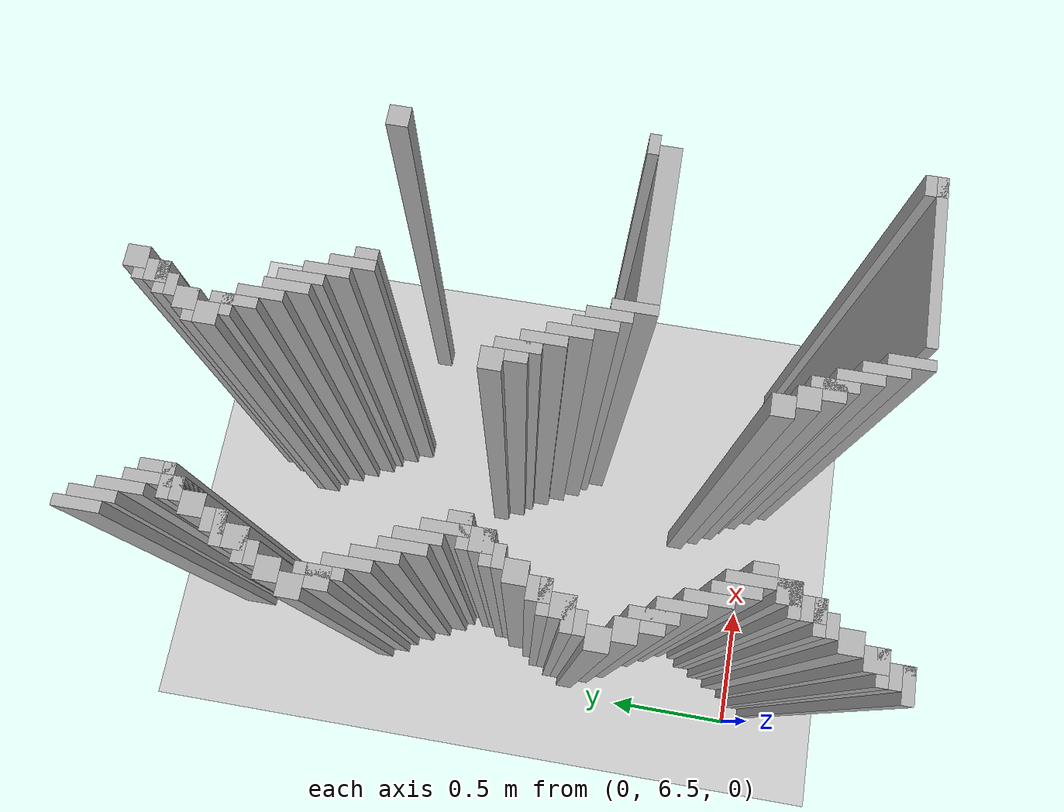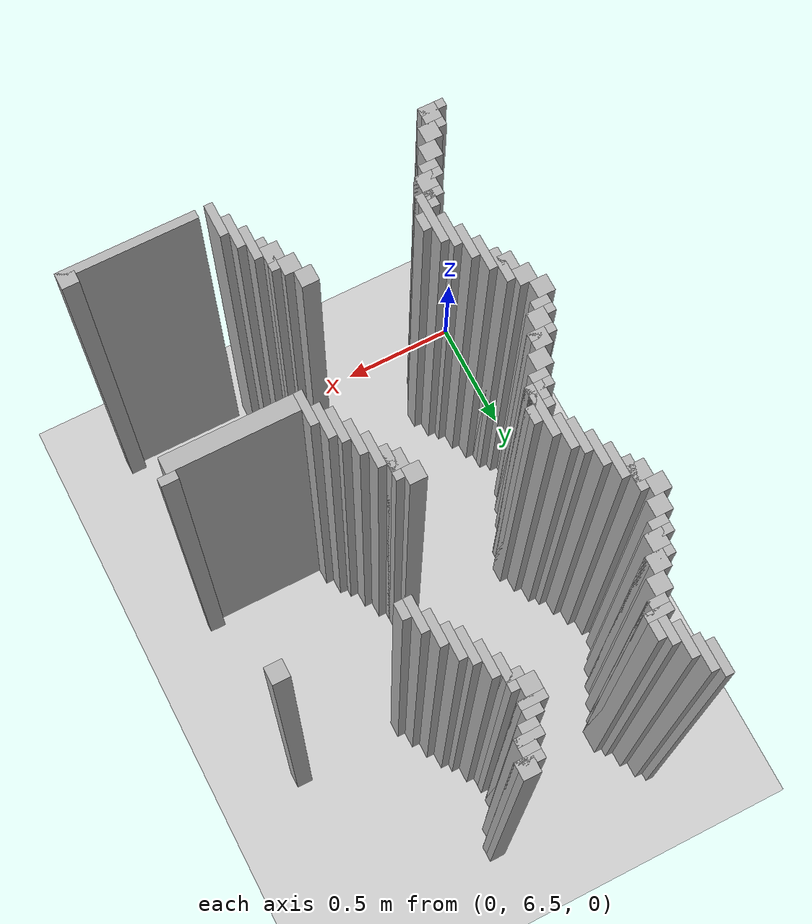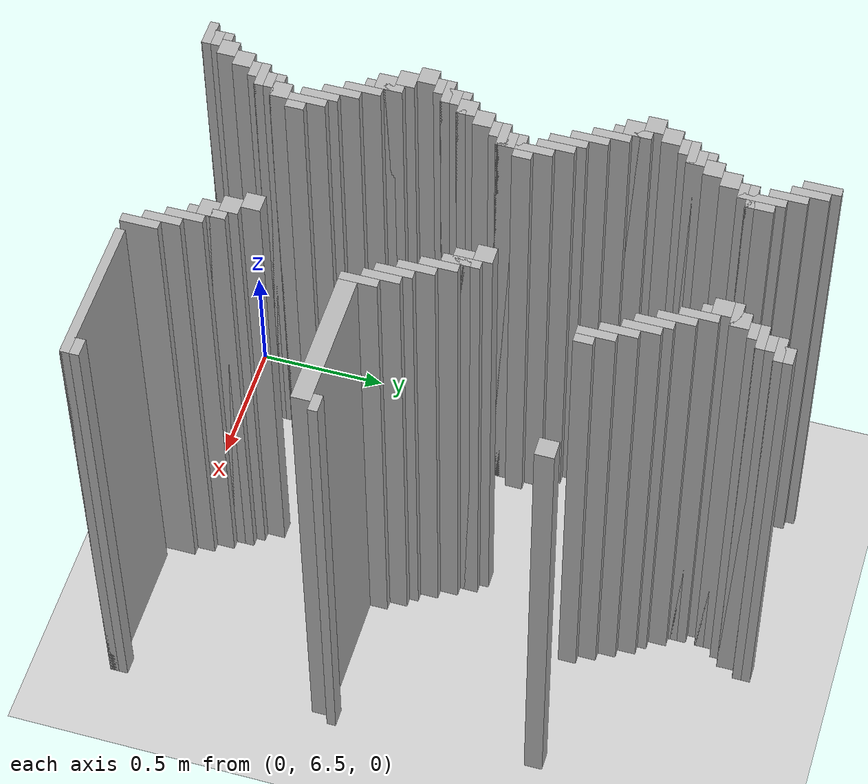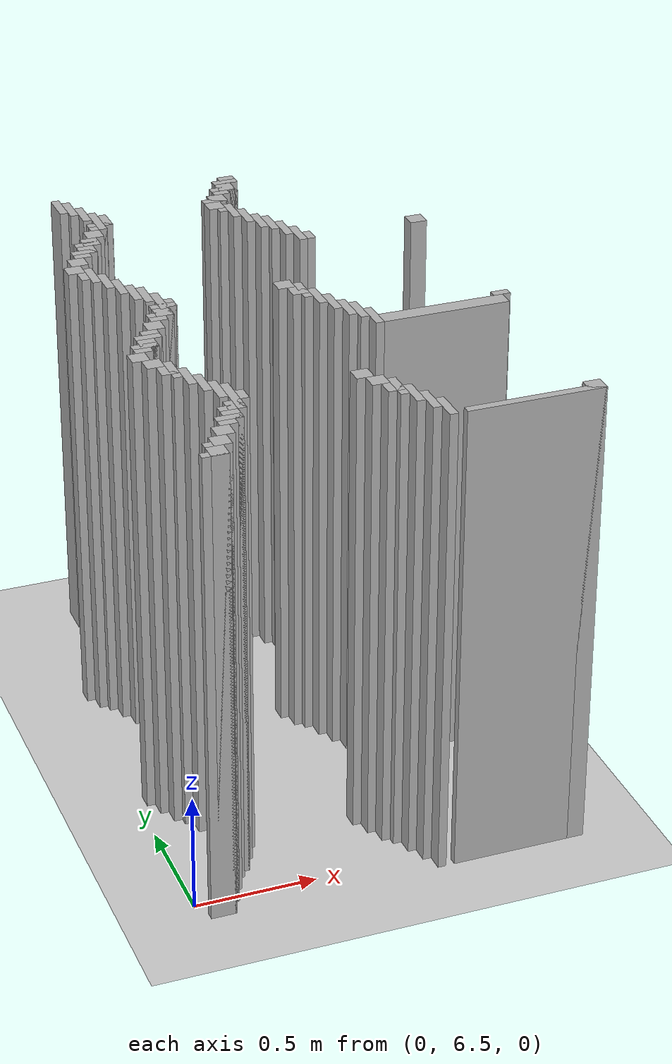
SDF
<sdf version="1.6">
 <world name="slam_world">
  <model name="ground_plane">
   <static>true</static>
   <link name="link">
    <collision name="collision">
     <geometry><plane><normal>0 0 1</normal><size>100 100</size></plane></geometry>
    </collision>
    <visual name="visual">
     <geometry><plane><normal>0 0 1</normal><size>100 100</size></plane></geometry>
     <material>
      <ambient>0.8 0.8 0.8 1</ambient>
      <diffuse>0.8 0.8 0.8 1</diffuse>
      <specular>0.8 0.8 0.8 1</specular>
     </material>
    </visual>
   </link>
  </model>
  <model name="wall_2921">
   <static>true</static>
   <pose>0.191415313225058 8.700696055684455 1.0 0 0 0</pose>
   <link name="link">
    <collision name="collision">
     <geometry><box><size>0.03480278422273782 0.13921113689095127 2.0</size></box></geometry>
    </collision>
    <visual name="visual">
     <geometry><box><size>0.03480278422273782 0.13921113689095127 2.0</size></box></geometry>
     <material><ambient>0.5 0.5 0.5 1</ambient><diffuse>0.7 0.7 0.7 1</diffuse></material>
    </visual>
   </link>
  </model>
  <model name="wall_2922">
   <static>true</static>
   <pose>0.9396751740139211 8.735498839907192 1.0 0 0 0</pose>
   <link name="link">
    <collision name="collision">
     <geometry><box><size>0.06960556844547564 0.06960556844547564 2.0</size></box></geometry>
    </collision>
    <visual name="visual">
     <geometry><box><size>0.06960556844547564 0.06960556844547564 2.0</size></box></geometry>
     <material><ambient>0.5 0.5 0.5 1</ambient><diffuse>0.7 0.7 0.7 1</diffuse></material>
    </visual>
   </link>
  </model>
  <model name="wall_2936">
   <static>true</static>
   <pose>0.2262180974477958 8.665893271461716 1.0 0 0 0</pose>
   <link name="link">
    <collision name="collision">
     <geometry><box><size>0.03480278422273782 0.13921113689095127 2.0</size></box></geometry>
    </collision>
    <visual name="visual">
     <geometry><box><size>0.03480278422273782 0.13921113689095127 2.0</size></box></geometry>
     <material><ambient>0.5 0.5 0.5 1</ambient><diffuse>0.7 0.7 0.7 1</diffuse></material>
    </visual>
   </link>
  </model>
  <model name="wall_2937">
   <static>true</static>
   <pose>0.9222737819025522 8.718097447795824 1.0 0 0 0</pose>
   <link name="link">
    <collision name="collision">
     <geometry><box><size>0.10440835266821345 0.03480278422273782 2.0</size></box></geometry>
    </collision>
    <visual name="visual">
     <geometry><box><size>0.10440835266821345 0.03480278422273782 2.0</size></box></geometry>
     <material><ambient>0.5 0.5 0.5 1</ambient><diffuse>0.7 0.7 0.7 1</diffuse></material>
    </visual>
   </link>
  </model>
  <model name="wall_2951">
   <static>true</static>
   <pose>0.9048723897911832 8.665893271461716 1.0 0 0 0</pose>
   <link name="link">
    <collision name="collision">
     <geometry><box><size>0.06960556844547564 0.06960556844547564 2.0</size></box></geometry>
    </collision>
    <visual name="visual">
     <geometry><box><size>0.06960556844547564 0.06960556844547564 2.0</size></box></geometry>
     <material><ambient>0.5 0.5 0.5 1</ambient><diffuse>0.7 0.7 0.7 1</diffuse></material>
    </visual>
   </link>
  </model>
  <model name="wall_2961">
   <static>true</static>
   <pose>0.2610208816705336 8.596287703016241 1.0 0 0 0</pose>
   <link name="link">
    <collision name="collision">
     <geometry><box><size>0.03480278422273782 0.13921113689095127 2.0</size></box></geometry>
    </collision>
    <visual name="visual">
     <geometry><box><size>0.03480278422273782 0.13921113689095127 2.0</size></box></geometry>
     <material><ambient>0.5 0.5 0.5 1</ambient><diffuse>0.7 0.7 0.7 1</diffuse></material>
    </visual>
   </link>
  </model>
  <model name="wall_2962">
   <static>true</static>
   <pose>0.8874709976798143 8.648491879350347 1.0 0 0 0</pose>
   <link name="link">
    <collision name="collision">
     <geometry><box><size>0.10440835266821345 0.03480278422273782 2.0</size></box></geometry>
    </collision>
    <visual name="visual">
     <geometry><box><size>0.10440835266821345 0.03480278422273782 2.0</size></box></geometry>
     <material><ambient>0.5 0.5 0.5 1</ambient><diffuse>0.7 0.7 0.7 1</diffuse></material>
    </visual>
   </link>
  </model>
  <model name="wall_2976">
   <static>true</static>
   <pose>0.8700696055684455 8.61368909512761 1.0 0 0 0</pose>
   <link name="link">
    <collision name="collision">
     <geometry><box><size>0.06960556844547564 0.03480278422273782 2.0</size></box></geometry>
    </collision>
    <visual name="visual">
     <geometry><box><size>0.06960556844547564 0.03480278422273782 2.0</size></box></geometry>
     <material><ambient>0.5 0.5 0.5 1</ambient><diffuse>0.7 0.7 0.7 1</diffuse></material>
    </visual>
   </link>
  </model>
  <model name="wall_2985">
   <static>true</static>
   <pose>0.29582366589327147 8.509280742459396 1.0 0 0 0</pose>
   <link name="link">
    <collision name="collision">
     <geometry><box><size>0.03480278422273782 0.17401392111368907 2.0</size></box></geometry>
    </collision>
    <visual name="visual">
     <geometry><box><size>0.03480278422273782 0.17401392111368907 2.0</size></box></geometry>
     <material><ambient>0.5 0.5 0.5 1</ambient><diffuse>0.7 0.7 0.7 1</diffuse></material>
    </visual>
   </link>
  </model>
  <model name="wall_2986">
   <static>true</static>
   <pose>0.8352668213457076 8.561484918793504 1.0 0 0 0</pose>
   <link name="link">
    <collision name="collision">
     <geometry><box><size>0.06960556844547564 0.06960556844547564 2.0</size></box></geometry>
    </collision>
    <visual name="visual">
     <geometry><box><size>0.06960556844547564 0.06960556844547564 2.0</size></box></geometry>
     <material><ambient>0.5 0.5 0.5 1</ambient><diffuse>0.7 0.7 0.7 1</diffuse></material>
    </visual>
   </link>
  </model>
  <model name="wall_3000">
   <static>true</static>
   <pose>0.3306264501160093 8.509280742459396 1.0 0 0 0</pose>
   <link name="link">
    <collision name="collision">
     <geometry><box><size>0.03480278422273782 0.10440835266821345 2.0</size></box></geometry>
    </collision>
    <visual name="visual">
     <geometry><box><size>0.03480278422273782 0.10440835266821345 2.0</size></box></geometry>
     <material><ambient>0.5 0.5 0.5 1</ambient><diffuse>0.7 0.7 0.7 1</diffuse></material>
    </visual>
   </link>
  </model>
  <model name="wall_3001">
   <static>true</static>
   <pose>0.8178654292343387 8.544083526682135 1.0 0 0 0</pose>
   <link name="link">
    <collision name="collision">
     <geometry><box><size>0.10440835266821345 0.03480278422273782 2.0</size></box></geometry>
    </collision>
    <visual name="visual">
     <geometry><box><size>0.10440835266821345 0.03480278422273782 2.0</size></box></geometry>
     <material><ambient>0.5 0.5 0.5 1</ambient><diffuse>0.7 0.7 0.7 1</diffuse></material>
    </visual>
   </link>
  </model>
  <model name="wall_3015">
   <static>true</static>
   <pose>0.8004640371229698 8.491879350348027 1.0 0 0 0</pose>
   <link name="link">
    <collision name="collision">
     <geometry><box><size>0.06960556844547564 0.06960556844547564 2.0</size></box></geometry>
    </collision>
    <visual name="visual">
     <geometry><box><size>0.06960556844547564 0.06960556844547564 2.0</size></box></geometry>
     <material><ambient>0.5 0.5 0.5 1</ambient><diffuse>0.7 0.7 0.7 1</diffuse></material>
    </visual>
   </link>
  </model>
  <model name="wall_3027">
   <static>true</static>
   <pose>0.29582366589327147 8.474477958236658 1.0 0 0 0</pose>
   <link name="link">
    <collision name="collision">
     <geometry><box><size>0.10440835266821345 0.03480278422273782 2.0</size></box></geometry>
    </collision>
    <visual name="visual">
     <geometry><box><size>0.10440835266821345 0.03480278422273782 2.0</size></box></geometry>
     <material><ambient>0.5 0.5 0.5 1</ambient><diffuse>0.7 0.7 0.7 1</diffuse></material>
    </visual>
   </link>
  </model>
  <model name="wall_3028">
   <static>true</static>
   <pose>0.8526682134570766 8.422273781902552 1.0 0 0 0</pose>
   <link name="link">
    <collision name="collision">
     <geometry><box><size>0.03480278422273782 0.13921113689095127 2.0</size></box></geometry>
    </collision>
    <visual name="visual">
     <geometry><box><size>0.03480278422273782 0.13921113689095127 2.0</size></box></geometry>
     <material><ambient>0.5 0.5 0.5 1</ambient><diffuse>0.7 0.7 0.7 1</diffuse></material>
    </visual>
   </link>
  </model>
  <model name="wall_3042">
   <static>true</static>
   <pose>0.27842227378190254 8.43967517401392 1.0 0 0 0</pose>
   <link name="link">
    <collision name="collision">
     <geometry><box><size>0.06960556844547564 0.03480278422273782 2.0</size></box></geometry>
    </collision>
    <visual name="visual">
     <geometry><box><size>0.06960556844547564 0.03480278422273782 2.0</size></box></geometry>
     <material><ambient>0.5 0.5 0.5 1</ambient><diffuse>0.7 0.7 0.7 1</diffuse></material>
    </visual>
   </link>
  </model>
  <model name="wall_3043">
   <static>true</static>
   <pose>0.8352668213457076 8.43967517401392 1.0 0 0 0</pose>
   <link name="link">
    <collision name="collision">
     <geometry><box><size>0.06960556844547564 0.03480278422273782 2.0</size></box></geometry>
    </collision>
    <visual name="visual">
     <geometry><box><size>0.06960556844547564 0.03480278422273782 2.0</size></box></geometry>
     <material><ambient>0.5 0.5 0.5 1</ambient><diffuse>0.7 0.7 0.7 1</diffuse></material>
    </visual>
   </link>
  </model>
  <model name="wall_3059">
   <static>true</static>
   <pose>0.24361948955916474 8.387470997679815 1.0 0 0 0</pose>
   <link name="link">
    <collision name="collision">
     <geometry><box><size>0.06960556844547564 0.06960556844547564 2.0</size></box></geometry>
    </collision>
    <visual name="visual">
     <geometry><box><size>0.06960556844547564 0.06960556844547564 2.0</size></box></geometry>
     <material><ambient>0.5 0.5 0.5 1</ambient><diffuse>0.7 0.7 0.7 1</diffuse></material>
    </visual>
   </link>
  </model>
  <model name="wall_3060">
   <static>true</static>
   <pose>0.8874709976798143 8.352668213457076 1.0 0 0 0</pose>
   <link name="link">
    <collision name="collision">
     <geometry><box><size>0.03480278422273782 0.13921113689095127 2.0</size></box></geometry>
    </collision>
    <visual name="visual">
     <geometry><box><size>0.03480278422273782 0.13921113689095127 2.0</size></box></geometry>
     <material><ambient>0.5 0.5 0.5 1</ambient><diffuse>0.7 0.7 0.7 1</diffuse></material>
    </visual>
   </link>
  </model>
  <model name="wall_3076">
   <static>true</static>
   <pose>0.2088167053364269 8.317865429234338 1.0 0 0 0</pose>
   <link name="link">
    <collision name="collision">
     <geometry><box><size>0.06960556844547564 0.06960556844547564 2.0</size></box></geometry>
    </collision>
    <visual name="visual">
     <geometry><box><size>0.06960556844547564 0.06960556844547564 2.0</size></box></geometry>
     <material><ambient>0.5 0.5 0.5 1</ambient><diffuse>0.7 0.7 0.7 1</diffuse></material>
    </visual>
   </link>
  </model>
  <model name="wall_3077">
   <static>true</static>
   <pose>0.9222737819025522 8.2830626450116 1.0 0 0 0</pose>
   <link name="link">
    <collision name="collision">
     <geometry><box><size>0.03480278422273782 0.13921113689095127 2.0</size></box></geometry>
    </collision>
    <visual name="visual">
     <geometry><box><size>0.03480278422273782 0.13921113689095127 2.0</size></box></geometry>
     <material><ambient>0.5 0.5 0.5 1</ambient><diffuse>0.7 0.7 0.7 1</diffuse></material>
    </visual>
   </link>
  </model>
  <model name="wall_3093">
   <static>true</static>
   <pose>0.191415313225058 8.30046403712297 1.0 0 0 0</pose>
   <link name="link">
    <collision name="collision">
     <geometry><box><size>0.10440835266821345 0.03480278422273782 2.0</size></box></geometry>
    </collision>
    <visual name="visual">
     <geometry><box><size>0.10440835266821345 0.03480278422273782 2.0</size></box></geometry>
     <material><ambient>0.5 0.5 0.5 1</ambient><diffuse>0.7 0.7 0.7 1</diffuse></material>
    </visual>
   </link>
  </model>
  <model name="wall_3094">
   <static>true</static>
   <pose>0.95707656612529 8.248259860788863 1.0 0 0 0</pose>
   <link name="link">
    <collision name="collision">
     <geometry><box><size>0.03480278422273782 0.13921113689095127 2.0</size></box></geometry>
    </collision>
    <visual name="visual">
     <geometry><box><size>0.03480278422273782 0.13921113689095127 2.0</size></box></geometry>
     <material><ambient>0.5 0.5 0.5 1</ambient><diffuse>0.7 0.7 0.7 1</diffuse></material>
    </visual>
   </link>
  </model>
  <model name="wall_3110">
   <static>true</static>
   <pose>0.17401392111368907 8.248259860788863 1.0 0 0 0</pose>
   <link name="link">
    <collision name="collision">
     <geometry><box><size>0.06960556844547564 0.06960556844547564 2.0</size></box></geometry>
    </collision>
    <visual name="visual">
     <geometry><box><size>0.06960556844547564 0.06960556844547564 2.0</size></box></geometry>
     <material><ambient>0.5 0.5 0.5 1</ambient><diffuse>0.7 0.7 0.7 1</diffuse></material>
    </visual>
   </link>
  </model>
  <model name="wall_3123">
   <static>true</static>
   <pose>0.15661252900232017 8.230858468677495 1.0 0 0 0</pose>
   <link name="link">
    <collision name="collision">
     <geometry><box><size>0.10440835266821345 0.03480278422273782 2.0</size></box></geometry>
    </collision>
    <visual name="visual">
     <geometry><box><size>0.10440835266821345 0.03480278422273782 2.0</size></box></geometry>
     <material><ambient>0.5 0.5 0.5 1</ambient><diffuse>0.7 0.7 0.7 1</diffuse></material>
    </visual>
   </link>
  </model>
  <model name="wall_3124">
   <static>true</static>
   <pose>0.9918793503480278 8.178654292343387 1.0 0 0 0</pose>
   <link name="link">
    <collision name="collision">
     <geometry><box><size>0.03480278422273782 0.13921113689095127 2.0</size></box></geometry>
    </collision>
    <visual name="visual">
     <geometry><box><size>0.03480278422273782 0.13921113689095127 2.0</size></box></geometry>
     <material><ambient>0.5 0.5 0.5 1</ambient><diffuse>0.7 0.7 0.7 1</diffuse></material>
    </visual>
   </link>
  </model>
  <model name="wall_3140">
   <static>true</static>
   <pose>0.13921113689095127 8.196055684454755 1.0 0 0 0</pose>
   <link name="link">
    <collision name="collision">
     <geometry><box><size>0.06960556844547564 0.03480278422273782 2.0</size></box></geometry>
    </collision>
    <visual name="visual">
     <geometry><box><size>0.06960556844547564 0.03480278422273782 2.0</size></box></geometry>
     <material><ambient>0.5 0.5 0.5 1</ambient><diffuse>0.7 0.7 0.7 1</diffuse></material>
    </visual>
   </link>
  </model>
  <model name="wall_3149">
   <static>true</static>
   <pose>0.10440835266821345 8.14385150812065 1.0 0 0 0</pose>
   <link name="link">
    <collision name="collision">
     <geometry><box><size>0.06960556844547564 0.06960556844547564 2.0</size></box></geometry>
    </collision>
    <visual name="visual">
     <geometry><box><size>0.06960556844547564 0.06960556844547564 2.0</size></box></geometry>
     <material><ambient>0.5 0.5 0.5 1</ambient><diffuse>0.7 0.7 0.7 1</diffuse></material>
    </visual>
   </link>
  </model>
  <model name="wall_3150">
   <static>true</static>
   <pose>1.0266821345707655 8.109048723897912 1.0 0 0 0</pose>
   <link name="link">
    <collision name="collision">
     <geometry><box><size>0.03480278422273782 0.13921113689095127 2.0</size></box></geometry>
    </collision>
    <visual name="visual">
     <geometry><box><size>0.03480278422273782 0.13921113689095127 2.0</size></box></geometry>
     <material><ambient>0.5 0.5 0.5 1</ambient><diffuse>0.7 0.7 0.7 1</diffuse></material>
    </visual>
   </link>
  </model>
  <model name="wall_3178">
   <static>true</static>
   <pose>0.06960556844547564 8.074245939675174 1.0 0 0 0</pose>
   <link name="link">
    <collision name="collision">
     <geometry><box><size>0.06960556844547564 0.06960556844547564 2.0</size></box></geometry>
    </collision>
    <visual name="visual">
     <geometry><box><size>0.06960556844547564 0.06960556844547564 2.0</size></box></geometry>
     <material><ambient>0.5 0.5 0.5 1</ambient><diffuse>0.7 0.7 0.7 1</diffuse></material>
    </visual>
   </link>
  </model>
  <model name="wall_3179">
   <static>true</static>
   <pose>1.0614849187935034 8.074245939675174 1.0 0 0 0</pose>
   <link name="link">
    <collision name="collision">
     <geometry><box><size>0.03480278422273782 0.06960556844547564 2.0</size></box></geometry>
    </collision>
    <visual name="visual">
     <geometry><box><size>0.03480278422273782 0.06960556844547564 2.0</size></box></geometry>
     <material><ambient>0.5 0.5 0.5 1</ambient><diffuse>0.7 0.7 0.7 1</diffuse></material>
    </visual>
   </link>
  </model>
  <model name="wall_3180">
   <static>true</static>
   <pose>1.531322505800464 8.074245939675174 1.0 0 0 0</pose>
   <link name="link">
    <collision name="collision">
     <geometry><box><size>0.06960556844547564 0.06960556844547564 2.0</size></box></geometry>
    </collision>
    <visual name="visual">
     <geometry><box><size>0.06960556844547564 0.06960556844547564 2.0</size></box></geometry>
     <material><ambient>0.5 0.5 0.5 1</ambient><diffuse>0.7 0.7 0.7 1</diffuse></material>
    </visual>
   </link>
  </model>
  <model name="wall_3192">
   <static>true</static>
   <pose>0.12180974477958237 8.004640371229698 1.0 0 0 0</pose>
   <link name="link">
    <collision name="collision">
     <geometry><box><size>0.03480278422273782 0.13921113689095127 2.0</size></box></geometry>
    </collision>
    <visual name="visual">
     <geometry><box><size>0.03480278422273782 0.13921113689095127 2.0</size></box></geometry>
     <material><ambient>0.5 0.5 0.5 1</ambient><diffuse>0.7 0.7 0.7 1</diffuse></material>
    </visual>
   </link>
  </model>
  <model name="wall_3205">
   <static>true</static>
   <pose>0.10440835266821345 8.004640371229698 1.0 0 0 0</pose>
   <link name="link">
    <collision name="collision">
     <geometry><box><size>0.06960556844547564 0.06960556844547564 2.0</size></box></geometry>
    </collision>
    <visual name="visual">
     <geometry><box><size>0.06960556844547564 0.06960556844547564 2.0</size></box></geometry>
     <material><ambient>0.5 0.5 0.5 1</ambient><diffuse>0.7 0.7 0.7 1</diffuse></material>
    </visual>
   </link>
  </model>
  <model name="wall_3218">
   <static>true</static>
   <pose>0.15661252900232017 7.935034802784222 1.0 0 0 0</pose>
   <link name="link">
    <collision name="collision">
     <geometry><box><size>0.03480278422273782 0.13921113689095127 2.0</size></box></geometry>
    </collision>
    <visual name="visual">
     <geometry><box><size>0.03480278422273782 0.13921113689095127 2.0</size></box></geometry>
     <material><ambient>0.5 0.5 0.5 1</ambient><diffuse>0.7 0.7 0.7 1</diffuse></material>
    </visual>
   </link>
  </model>
  <model name="wall_3236">
   <static>true</static>
   <pose>0.191415313225058 7.865429234338746 1.0 0 0 0</pose>
   <link name="link">
    <collision name="collision">
     <geometry><box><size>0.03480278422273782 0.13921113689095127 2.0</size></box></geometry>
    </collision>
    <visual name="visual">
     <geometry><box><size>0.03480278422273782 0.13921113689095127 2.0</size></box></geometry>
     <material><ambient>0.5 0.5 0.5 1</ambient><diffuse>0.7 0.7 0.7 1</diffuse></material>
    </visual>
   </link>
  </model>
  <model name="wall_3249">
   <static>true</static>
   <pose>0.2262180974477958 7.795823665893272 1.0 0 0 0</pose>
   <link name="link">
    <collision name="collision">
     <geometry><box><size>0.03480278422273782 0.13921113689095127 2.0</size></box></geometry>
    </collision>
    <visual name="visual">
     <geometry><box><size>0.03480278422273782 0.13921113689095127 2.0</size></box></geometry>
     <material><ambient>0.5 0.5 0.5 1</ambient><diffuse>0.7 0.7 0.7 1</diffuse></material>
    </visual>
   </link>
  </model>
  <model name="wall_3262">
   <static>true</static>
   <pose>0.2610208816705336 7.761020881670533 1.0 0 0 0</pose>
   <link name="link">
    <collision name="collision">
     <geometry><box><size>0.03480278422273782 0.13921113689095127 2.0</size></box></geometry>
    </collision>
    <visual name="visual">
     <geometry><box><size>0.03480278422273782 0.13921113689095127 2.0</size></box></geometry>
     <material><ambient>0.5 0.5 0.5 1</ambient><diffuse>0.7 0.7 0.7 1</diffuse></material>
    </visual>
   </link>
  </model>
  <model name="wall_3280">
   <static>true</static>
   <pose>0.29582366589327147 7.65661252900232 1.0 0 0 0</pose>
   <link name="link">
    <collision name="collision">
     <geometry><box><size>0.03480278422273782 0.2088167053364269 2.0</size></box></geometry>
    </collision>
    <visual name="visual">
     <geometry><box><size>0.03480278422273782 0.2088167053364269 2.0</size></box></geometry>
     <material><ambient>0.5 0.5 0.5 1</ambient><diffuse>0.7 0.7 0.7 1</diffuse></material>
    </visual>
   </link>
  </model>
  <model name="wall_3298">
   <static>true</static>
   <pose>0.3306264501160093 7.65661252900232 1.0 0 0 0</pose>
   <link name="link">
    <collision name="collision">
     <geometry><box><size>0.03480278422273782 0.06960556844547564 2.0</size></box></geometry>
    </collision>
    <visual name="visual">
     <geometry><box><size>0.03480278422273782 0.06960556844547564 2.0</size></box></geometry>
     <material><ambient>0.5 0.5 0.5 1</ambient><diffuse>0.7 0.7 0.7 1</diffuse></material>
    </visual>
   </link>
  </model>
  <model name="wall_3299">
   <static>true</static>
   <pose>0.8004640371229698 7.65661252900232 1.0 0 0 0</pose>
   <link name="link">
    <collision name="collision">
     <geometry><box><size>0.06960556844547564 0.06960556844547564 2.0</size></box></geometry>
    </collision>
    <visual name="visual">
     <geometry><box><size>0.06960556844547564 0.06960556844547564 2.0</size></box></geometry>
     <material><ambient>0.5 0.5 0.5 1</ambient><diffuse>0.7 0.7 0.7 1</diffuse></material>
    </visual>
   </link>
  </model>
  <model name="wall_3312">
   <static>true</static>
   <pose>0.29582366589327147 7.6392111368909505 1.0 0 0 0</pose>
   <link name="link">
    <collision name="collision">
     <geometry><box><size>0.10440835266821345 0.03480278422273782 2.0</size></box></geometry>
    </collision>
    <visual name="visual">
     <geometry><box><size>0.10440835266821345 0.03480278422273782 2.0</size></box></geometry>
     <material><ambient>0.5 0.5 0.5 1</ambient><diffuse>0.7 0.7 0.7 1</diffuse></material>
    </visual>
   </link>
  </model>
  <model name="wall_3313">
   <static>true</static>
   <pose>0.8526682134570766 7.587006960556844 1.0 0 0 0</pose>
   <link name="link">
    <collision name="collision">
     <geometry><box><size>0.03480278422273782 0.13921113689095127 2.0</size></box></geometry>
    </collision>
    <visual name="visual">
     <geometry><box><size>0.03480278422273782 0.13921113689095127 2.0</size></box></geometry>
     <material><ambient>0.5 0.5 0.5 1</ambient><diffuse>0.7 0.7 0.7 1</diffuse></material>
    </visual>
   </link>
  </model>
  <model name="wall_3324">
   <static>true</static>
   <pose>0.27842227378190254 7.587006960556844 1.0 0 0 0</pose>
   <link name="link">
    <collision name="collision">
     <geometry><box><size>0.06960556844547564 0.06960556844547564 2.0</size></box></geometry>
    </collision>
    <visual name="visual">
     <geometry><box><size>0.06960556844547564 0.06960556844547564 2.0</size></box></geometry>
     <material><ambient>0.5 0.5 0.5 1</ambient><diffuse>0.7 0.7 0.7 1</diffuse></material>
    </visual>
   </link>
  </model>
  <model name="wall_3325">
   <static>true</static>
   <pose>0.8352668213457076 7.587006960556844 1.0 0 0 0</pose>
   <link name="link">
    <collision name="collision">
     <geometry><box><size>0.06960556844547564 0.06960556844547564 2.0</size></box></geometry>
    </collision>
    <visual name="visual">
     <geometry><box><size>0.06960556844547564 0.06960556844547564 2.0</size></box></geometry>
     <material><ambient>0.5 0.5 0.5 1</ambient><diffuse>0.7 0.7 0.7 1</diffuse></material>
    </visual>
   </link>
  </model>
  <model name="wall_3339">
   <static>true</static>
   <pose>0.2610208816705336 7.569605568445476 1.0 0 0 0</pose>
   <link name="link">
    <collision name="collision">
     <geometry><box><size>0.10440835266821345 0.03480278422273782 2.0</size></box></geometry>
    </collision>
    <visual name="visual">
     <geometry><box><size>0.10440835266821345 0.03480278422273782 2.0</size></box></geometry>
     <material><ambient>0.5 0.5 0.5 1</ambient><diffuse>0.7 0.7 0.7 1</diffuse></material>
    </visual>
   </link>
  </model>
  <model name="wall_3340">
   <static>true</static>
   <pose>0.8874709976798143 7.517401392111369 1.0 0 0 0</pose>
   <link name="link">
    <collision name="collision">
     <geometry><box><size>0.03480278422273782 0.13921113689095127 2.0</size></box></geometry>
    </collision>
    <visual name="visual">
     <geometry><box><size>0.03480278422273782 0.13921113689095127 2.0</size></box></geometry>
     <material><ambient>0.5 0.5 0.5 1</ambient><diffuse>0.7 0.7 0.7 1</diffuse></material>
    </visual>
   </link>
  </model>
  <model name="wall_3354">
   <static>true</static>
   <pose>0.24361948955916474 7.534802784222737 1.0 0 0 0</pose>
   <link name="link">
    <collision name="collision">
     <geometry><box><size>0.06960556844547564 0.03480278422273782 2.0</size></box></geometry>
    </collision>
    <visual name="visual">
     <geometry><box><size>0.06960556844547564 0.03480278422273782 2.0</size></box></geometry>
     <material><ambient>0.5 0.5 0.5 1</ambient><diffuse>0.7 0.7 0.7 1</diffuse></material>
    </visual>
   </link>
  </model>
  <model name="wall_3364">
   <static>true</static>
   <pose>0.2088167053364269 7.48259860788863 1.0 0 0 0</pose>
   <link name="link">
    <collision name="collision">
     <geometry><box><size>0.06960556844547564 0.06960556844547564 2.0</size></box></geometry>
    </collision>
    <visual name="visual">
     <geometry><box><size>0.06960556844547564 0.06960556844547564 2.0</size></box></geometry>
     <material><ambient>0.5 0.5 0.5 1</ambient><diffuse>0.7 0.7 0.7 1</diffuse></material>
    </visual>
   </link>
  </model>
  <model name="wall_3365">
   <static>true</static>
   <pose>0.9222737819025522 7.447795823665893 1.0 0 0 0</pose>
   <link name="link">
    <collision name="collision">
     <geometry><box><size>0.03480278422273782 0.13921113689095127 2.0</size></box></geometry>
    </collision>
    <visual name="visual">
     <geometry><box><size>0.03480278422273782 0.13921113689095127 2.0</size></box></geometry>
     <material><ambient>0.5 0.5 0.5 1</ambient><diffuse>0.7 0.7 0.7 1</diffuse></material>
    </visual>
   </link>
  </model>
  <model name="wall_3379">
   <static>true</static>
   <pose>0.17401392111368907 7.412993039443156 1.0 0 0 0</pose>
   <link name="link">
    <collision name="collision">
     <geometry><box><size>0.06960556844547564 0.06960556844547564 2.0</size></box></geometry>
    </collision>
    <visual name="visual">
     <geometry><box><size>0.06960556844547564 0.06960556844547564 2.0</size></box></geometry>
     <material><ambient>0.5 0.5 0.5 1</ambient><diffuse>0.7 0.7 0.7 1</diffuse></material>
    </visual>
   </link>
  </model>
  <model name="wall_3380">
   <static>true</static>
   <pose>0.95707656612529 7.378190255220417 1.0 0 0 0</pose>
   <link name="link">
    <collision name="collision">
     <geometry><box><size>0.03480278422273782 0.13921113689095127 2.0</size></box></geometry>
    </collision>
    <visual name="visual">
     <geometry><box><size>0.03480278422273782 0.13921113689095127 2.0</size></box></geometry>
     <material><ambient>0.5 0.5 0.5 1</ambient><diffuse>0.7 0.7 0.7 1</diffuse></material>
    </visual>
   </link>
  </model>
  <model name="wall_3394">
   <static>true</static>
   <pose>0.15661252900232017 7.395591647331786 1.0 0 0 0</pose>
   <link name="link">
    <collision name="collision">
     <geometry><box><size>0.10440835266821345 0.03480278422273782 2.0</size></box></geometry>
    </collision>
    <visual name="visual">
     <geometry><box><size>0.10440835266821345 0.03480278422273782 2.0</size></box></geometry>
     <material><ambient>0.5 0.5 0.5 1</ambient><diffuse>0.7 0.7 0.7 1</diffuse></material>
    </visual>
   </link>
  </model>
  <model name="wall_3395">
   <static>true</static>
   <pose>0.9918793503480278 7.34338747099768 1.0 0 0 0</pose>
   <link name="link">
    <collision name="collision">
     <geometry><box><size>0.03480278422273782 0.13921113689095127 2.0</size></box></geometry>
    </collision>
    <visual name="visual">
     <geometry><box><size>0.03480278422273782 0.13921113689095127 2.0</size></box></geometry>
     <material><ambient>0.5 0.5 0.5 1</ambient><diffuse>0.7 0.7 0.7 1</diffuse></material>
    </visual>
   </link>
  </model>
  <model name="wall_3409">
   <static>true</static>
   <pose>0.13921113689095127 7.34338747099768 1.0 0 0 0</pose>
   <link name="link">
    <collision name="collision">
     <geometry><box><size>0.06960556844547564 0.06960556844547564 2.0</size></box></geometry>
    </collision>
    <visual name="visual">
     <geometry><box><size>0.06960556844547564 0.06960556844547564 2.0</size></box></geometry>
     <material><ambient>0.5 0.5 0.5 1</ambient><diffuse>0.7 0.7 0.7 1</diffuse></material>
    </visual>
   </link>
  </model>
  <model name="wall_3416">
   <static>true</static>
   <pose>0.12180974477958237 7.32598607888631 1.0 0 0 0</pose>
   <link name="link">
    <collision name="collision">
     <geometry><box><size>0.10440835266821345 0.03480278422273782 2.0</size></box></geometry>
    </collision>
    <visual name="visual">
     <geometry><box><size>0.10440835266821345 0.03480278422273782 2.0</size></box></geometry>
     <material><ambient>0.5 0.5 0.5 1</ambient><diffuse>0.7 0.7 0.7 1</diffuse></material>
    </visual>
   </link>
  </model>
  <model name="wall_3417">
   <static>true</static>
   <pose>1.0266821345707655 7.273781902552204 1.0 0 0 0</pose>
   <link name="link">
    <collision name="collision">
     <geometry><box><size>0.03480278422273782 0.13921113689095127 2.0</size></box></geometry>
    </collision>
    <visual name="visual">
     <geometry><box><size>0.03480278422273782 0.13921113689095127 2.0</size></box></geometry>
     <material><ambient>0.5 0.5 0.5 1</ambient><diffuse>0.7 0.7 0.7 1</diffuse></material>
    </visual>
   </link>
  </model>
  <model name="wall_3431">
   <static>true</static>
   <pose>0.10440835266821345 7.291183294663573 1.0 0 0 0</pose>
   <link name="link">
    <collision name="collision">
     <geometry><box><size>0.06960556844547564 0.03480278422273782 2.0</size></box></geometry>
    </collision>
    <visual name="visual">
     <geometry><box><size>0.06960556844547564 0.03480278422273782 2.0</size></box></geometry>
     <material><ambient>0.5 0.5 0.5 1</ambient><diffuse>0.7 0.7 0.7 1</diffuse></material>
    </visual>
   </link>
  </model>
  <model name="wall_3432">
   <static>true</static>
   <pose>1.5661252900232019 7.291183294663573 1.0 0 0 0</pose>
   <link name="link">
    <collision name="collision">
     <geometry><box><size>0.06960556844547564 0.03480278422273782 2.0</size></box></geometry>
    </collision>
    <visual name="visual">
     <geometry><box><size>0.06960556844547564 0.03480278422273782 2.0</size></box></geometry>
     <material><ambient>0.5 0.5 0.5 1</ambient><diffuse>0.7 0.7 0.7 1</diffuse></material>
    </visual>
   </link>
  </model>
  <model name="wall_3438">
   <static>true</static>
   <pose>0.06960556844547564 7.238979118329466 1.0 0 0 0</pose>
   <link name="link">
    <collision name="collision">
     <geometry><box><size>0.06960556844547564 0.06960556844547564 2.0</size></box></geometry>
    </collision>
    <visual name="visual">
     <geometry><box><size>0.06960556844547564 0.06960556844547564 2.0</size></box></geometry>
     <material><ambient>0.5 0.5 0.5 1</ambient><diffuse>0.7 0.7 0.7 1</diffuse></material>
    </visual>
   </link>
  </model>
  <model name="wall_3439">
   <static>true</static>
   <pose>1.3051044083526682 7.238979118329466 1.0 0 0 0</pose>
   <link name="link">
    <collision name="collision">
     <geometry><box><size>0.5220417633410672 0.06960556844547564 2.0</size></box></geometry>
    </collision>
    <visual name="visual">
     <geometry><box><size>0.5220417633410672 0.06960556844547564 2.0</size></box></geometry>
     <material><ambient>0.5 0.5 0.5 1</ambient><diffuse>0.7 0.7 0.7 1</diffuse></material>
    </visual>
   </link>
  </model>
  <model name="wall_3450">
   <static>true</static>
   <pose>0.10440835266821345 7.16937354988399 1.0 0 0 0</pose>
   <link name="link">
    <collision name="collision">
     <geometry><box><size>0.06960556844547564 0.06960556844547564 2.0</size></box></geometry>
    </collision>
    <visual name="visual">
     <geometry><box><size>0.06960556844547564 0.06960556844547564 2.0</size></box></geometry>
     <material><ambient>0.5 0.5 0.5 1</ambient><diffuse>0.7 0.7 0.7 1</diffuse></material>
    </visual>
   </link>
  </model>
  <model name="wall_3463">
   <static>true</static>
   <pose>0.15661252900232017 7.099767981438514 1.0 0 0 0</pose>
   <link name="link">
    <collision name="collision">
     <geometry><box><size>0.03480278422273782 0.13921113689095127 2.0</size></box></geometry>
    </collision>
    <visual name="visual">
     <geometry><box><size>0.03480278422273782 0.13921113689095127 2.0</size></box></geometry>
     <material><ambient>0.5 0.5 0.5 1</ambient><diffuse>0.7 0.7 0.7 1</diffuse></material>
    </visual>
   </link>
  </model>
  <model name="wall_3476">
   <static>true</static>
   <pose>0.13921113689095127 7.099767981438514 1.0 0 0 0</pose>
   <link name="link">
    <collision name="collision">
     <geometry><box><size>0.06960556844547564 0.06960556844547564 2.0</size></box></geometry>
    </collision>
    <visual name="visual">
     <geometry><box><size>0.06960556844547564 0.06960556844547564 2.0</size></box></geometry>
     <material><ambient>0.5 0.5 0.5 1</ambient><diffuse>0.7 0.7 0.7 1</diffuse></material>
    </visual>
   </link>
  </model>
  <model name="wall_3489">
   <static>true</static>
   <pose>0.191415313225058 7.03016241299304 1.0 0 0 0</pose>
   <link name="link">
    <collision name="collision">
     <geometry><box><size>0.03480278422273782 0.13921113689095127 2.0</size></box></geometry>
    </collision>
    <visual name="visual">
     <geometry><box><size>0.03480278422273782 0.13921113689095127 2.0</size></box></geometry>
     <material><ambient>0.5 0.5 0.5 1</ambient><diffuse>0.7 0.7 0.7 1</diffuse></material>
    </visual>
   </link>
  </model>
  <model name="wall_3506">
   <static>true</static>
   <pose>0.2262180974477958 6.960556844547564 1.0 0 0 0</pose>
   <link name="link">
    <collision name="collision">
     <geometry><box><size>0.03480278422273782 0.13921113689095127 2.0</size></box></geometry>
    </collision>
    <visual name="visual">
     <geometry><box><size>0.03480278422273782 0.13921113689095127 2.0</size></box></geometry>
     <material><ambient>0.5 0.5 0.5 1</ambient><diffuse>0.7 0.7 0.7 1</diffuse></material>
    </visual>
   </link>
  </model>
  <model name="wall_3523">
   <static>true</static>
   <pose>0.2610208816705336 6.890951276102088 1.0 0 0 0</pose>
   <link name="link">
    <collision name="collision">
     <geometry><box><size>0.03480278422273782 0.13921113689095127 2.0</size></box></geometry>
    </collision>
    <visual name="visual">
     <geometry><box><size>0.03480278422273782 0.13921113689095127 2.0</size></box></geometry>
     <material><ambient>0.5 0.5 0.5 1</ambient><diffuse>0.7 0.7 0.7 1</diffuse></material>
    </visual>
   </link>
  </model>
  <model name="wall_3536">
   <static>true</static>
   <pose>0.29582366589327147 6.821345707656612 1.0 0 0 0</pose>
   <link name="link">
    <collision name="collision">
     <geometry><box><size>0.03480278422273782 0.2088167053364269 2.0</size></box></geometry>
    </collision>
    <visual name="visual">
     <geometry><box><size>0.03480278422273782 0.2088167053364269 2.0</size></box></geometry>
     <material><ambient>0.5 0.5 0.5 1</ambient><diffuse>0.7 0.7 0.7 1</diffuse></material>
    </visual>
   </link>
  </model>
  <model name="wall_3553">
   <static>true</static>
   <pose>0.3306264501160093 6.821345707656612 1.0 0 0 0</pose>
   <link name="link">
    <collision name="collision">
     <geometry><box><size>0.03480278422273782 0.06960556844547564 2.0</size></box></geometry>
    </collision>
    <visual name="visual">
     <geometry><box><size>0.03480278422273782 0.06960556844547564 2.0</size></box></geometry>
     <material><ambient>0.5 0.5 0.5 1</ambient><diffuse>0.7 0.7 0.7 1</diffuse></material>
    </visual>
   </link>
  </model>
  <model name="wall_3554">
   <static>true</static>
   <pose>0.8004640371229698 6.821345707656612 1.0 0 0 0</pose>
   <link name="link">
    <collision name="collision">
     <geometry><box><size>0.06960556844547564 0.06960556844547564 2.0</size></box></geometry>
    </collision>
    <visual name="visual">
     <geometry><box><size>0.06960556844547564 0.06960556844547564 2.0</size></box></geometry>
     <material><ambient>0.5 0.5 0.5 1</ambient><diffuse>0.7 0.7 0.7 1</diffuse></material>
    </visual>
   </link>
  </model>
  <model name="wall_3572">
   <static>true</static>
   <pose>0.27842227378190254 6.751740139211137 1.0 0 0 0</pose>
   <link name="link">
    <collision name="collision">
     <geometry><box><size>0.06960556844547564 0.06960556844547564 2.0</size></box></geometry>
    </collision>
    <visual name="visual">
     <geometry><box><size>0.06960556844547564 0.06960556844547564 2.0</size></box></geometry>
     <material><ambient>0.5 0.5 0.5 1</ambient><diffuse>0.7 0.7 0.7 1</diffuse></material>
    </visual>
   </link>
  </model>
  <model name="wall_3573">
   <static>true</static>
   <pose>0.8352668213457076 6.751740139211137 1.0 0 0 0</pose>
   <link name="link">
    <collision name="collision">
     <geometry><box><size>0.06960556844547564 0.06960556844547564 2.0</size></box></geometry>
    </collision>
    <visual name="visual">
     <geometry><box><size>0.06960556844547564 0.06960556844547564 2.0</size></box></geometry>
     <material><ambient>0.5 0.5 0.5 1</ambient><diffuse>0.7 0.7 0.7 1</diffuse></material>
    </visual>
   </link>
  </model>
  <model name="wall_3586">
   <static>true</static>
   <pose>0.2610208816705336 6.734338747099768 1.0 0 0 0</pose>
   <link name="link">
    <collision name="collision">
     <geometry><box><size>0.10440835266821345 0.03480278422273782 2.0</size></box></geometry>
    </collision>
    <visual name="visual">
     <geometry><box><size>0.10440835266821345 0.03480278422273782 2.0</size></box></geometry>
     <material><ambient>0.5 0.5 0.5 1</ambient><diffuse>0.7 0.7 0.7 1</diffuse></material>
    </visual>
   </link>
  </model>
  <model name="wall_3587">
   <static>true</static>
   <pose>0.8874709976798143 6.682134570765661 1.0 0 0 0</pose>
   <link name="link">
    <collision name="collision">
     <geometry><box><size>0.03480278422273782 0.13921113689095127 2.0</size></box></geometry>
    </collision>
    <visual name="visual">
     <geometry><box><size>0.03480278422273782 0.13921113689095127 2.0</size></box></geometry>
     <material><ambient>0.5 0.5 0.5 1</ambient><diffuse>0.7 0.7 0.7 1</diffuse></material>
    </visual>
   </link>
  </model>
  <model name="wall_3600">
   <static>true</static>
   <pose>0.24361948955916474 6.682134570765661 1.0 0 0 0</pose>
   <link name="link">
    <collision name="collision">
     <geometry><box><size>0.06960556844547564 0.06960556844547564 2.0</size></box></geometry>
    </collision>
    <visual name="visual">
     <geometry><box><size>0.06960556844547564 0.06960556844547564 2.0</size></box></geometry>
     <material><ambient>0.5 0.5 0.5 1</ambient><diffuse>0.7 0.7 0.7 1</diffuse></material>
    </visual>
   </link>
  </model>
  <model name="wall_3601">
   <static>true</static>
   <pose>0.8700696055684455 6.682134570765661 1.0 0 0 0</pose>
   <link name="link">
    <collision name="collision">
     <geometry><box><size>0.06960556844547564 0.06960556844547564 2.0</size></box></geometry>
    </collision>
    <visual name="visual">
     <geometry><box><size>0.06960556844547564 0.06960556844547564 2.0</size></box></geometry>
     <material><ambient>0.5 0.5 0.5 1</ambient><diffuse>0.7 0.7 0.7 1</diffuse></material>
    </visual>
   </link>
  </model>
  <model name="wall_3614">
   <static>true</static>
   <pose>0.2262180974477958 6.664733178654292 1.0 0 0 0</pose>
   <link name="link">
    <collision name="collision">
     <geometry><box><size>0.10440835266821345 0.03480278422273782 2.0</size></box></geometry>
    </collision>
    <visual name="visual">
     <geometry><box><size>0.10440835266821345 0.03480278422273782 2.0</size></box></geometry>
     <material><ambient>0.5 0.5 0.5 1</ambient><diffuse>0.7 0.7 0.7 1</diffuse></material>
    </visual>
   </link>
  </model>
  <model name="wall_3615">
   <static>true</static>
   <pose>0.9222737819025522 6.612529002320185 1.0 0 0 0</pose>
   <link name="link">
    <collision name="collision">
     <geometry><box><size>0.03480278422273782 0.13921113689095127 2.0</size></box></geometry>
    </collision>
    <visual name="visual">
     <geometry><box><size>0.03480278422273782 0.13921113689095127 2.0</size></box></geometry>
     <material><ambient>0.5 0.5 0.5 1</ambient><diffuse>0.7 0.7 0.7 1</diffuse></material>
    </visual>
   </link>
  </model>
  <model name="wall_3628">
   <static>true</static>
   <pose>0.2088167053364269 6.629930394431554 1.0 0 0 0</pose>
   <link name="link">
    <collision name="collision">
     <geometry><box><size>0.06960556844547564 0.03480278422273782 2.0</size></box></geometry>
    </collision>
    <visual name="visual">
     <geometry><box><size>0.06960556844547564 0.03480278422273782 2.0</size></box></geometry>
     <material><ambient>0.5 0.5 0.5 1</ambient><diffuse>0.7 0.7 0.7 1</diffuse></material>
    </visual>
   </link>
  </model>
  <model name="wall_3636">
   <static>true</static>
   <pose>0.17401392111368907 6.577726218097448 1.0 0 0 0</pose>
   <link name="link">
    <collision name="collision">
     <geometry><box><size>0.06960556844547564 0.06960556844547564 2.0</size></box></geometry>
    </collision>
    <visual name="visual">
     <geometry><box><size>0.06960556844547564 0.06960556844547564 2.0</size></box></geometry>
     <material><ambient>0.5 0.5 0.5 1</ambient><diffuse>0.7 0.7 0.7 1</diffuse></material>
    </visual>
   </link>
  </model>
  <model name="wall_3637">
   <static>true</static>
   <pose>0.95707656612529 6.5429234338747095 1.0 0 0 0</pose>
   <link name="link">
    <collision name="collision">
     <geometry><box><size>0.03480278422273782 0.13921113689095127 2.0</size></box></geometry>
    </collision>
    <visual name="visual">
     <geometry><box><size>0.03480278422273782 0.13921113689095127 2.0</size></box></geometry>
     <material><ambient>0.5 0.5 0.5 1</ambient><diffuse>0.7 0.7 0.7 1</diffuse></material>
    </visual>
   </link>
  </model>
  <model name="wall_3650">
   <static>true</static>
   <pose>0.13921113689095127 6.508120649651972 1.0 0 0 0</pose>
   <link name="link">
    <collision name="collision">
     <geometry><box><size>0.06960556844547564 0.06960556844547564 2.0</size></box></geometry>
    </collision>
    <visual name="visual">
     <geometry><box><size>0.06960556844547564 0.06960556844547564 2.0</size></box></geometry>
     <material><ambient>0.5 0.5 0.5 1</ambient><diffuse>0.7 0.7 0.7 1</diffuse></material>
    </visual>
   </link>
  </model>
  <model name="wall_3651">
   <static>true</static>
   <pose>0.9918793503480278 6.473317865429234 1.0 0 0 0</pose>
   <link name="link">
    <collision name="collision">
     <geometry><box><size>0.03480278422273782 0.13921113689095127 2.0</size></box></geometry>
    </collision>
    <visual name="visual">
     <geometry><box><size>0.03480278422273782 0.13921113689095127 2.0</size></box></geometry>
     <material><ambient>0.5 0.5 0.5 1</ambient><diffuse>0.7 0.7 0.7 1</diffuse></material>
    </visual>
   </link>
  </model>
  <model name="wall_3664">
   <static>true</static>
   <pose>0.12180974477958237 6.490719257540603 1.0 0 0 0</pose>
   <link name="link">
    <collision name="collision">
     <geometry><box><size>0.10440835266821345 0.03480278422273782 2.0</size></box></geometry>
    </collision>
    <visual name="visual">
     <geometry><box><size>0.10440835266821345 0.03480278422273782 2.0</size></box></geometry>
     <material><ambient>0.5 0.5 0.5 1</ambient><diffuse>0.7 0.7 0.7 1</diffuse></material>
    </visual>
   </link>
  </model>
  <model name="wall_3678">
   <static>true</static>
   <pose>0.10440835266821345 6.438515081206496 1.0 0 0 0</pose>
   <link name="link">
    <collision name="collision">
     <geometry><box><size>0.06960556844547564 0.06960556844547564 2.0</size></box></geometry>
    </collision>
    <visual name="visual">
     <geometry><box><size>0.06960556844547564 0.06960556844547564 2.0</size></box></geometry>
     <material><ambient>0.5 0.5 0.5 1</ambient><diffuse>0.7 0.7 0.7 1</diffuse></material>
    </visual>
   </link>
  </model>
  <model name="wall_3679">
   <static>true</static>
   <pose>1.5661252900232019 6.438515081206496 1.0 0 0 0</pose>
   <link name="link">
    <collision name="collision">
     <geometry><box><size>0.06960556844547564 0.06960556844547564 2.0</size></box></geometry>
    </collision>
    <visual name="visual">
     <geometry><box><size>0.06960556844547564 0.06960556844547564 2.0</size></box></geometry>
     <material><ambient>0.5 0.5 0.5 1</ambient><diffuse>0.7 0.7 0.7 1</diffuse></material>
    </visual>
   </link>
  </model>
  <model name="wall_3686">
   <static>true</static>
   <pose>0.08700696055684454 6.421113689095128 1.0 0 0 0</pose>
   <link name="link">
    <collision name="collision">
     <geometry><box><size>0.10440835266821345 0.03480278422273782 2.0</size></box></geometry>
    </collision>
    <visual name="visual">
     <geometry><box><size>0.10440835266821345 0.03480278422273782 2.0</size></box></geometry>
     <material><ambient>0.5 0.5 0.5 1</ambient><diffuse>0.7 0.7 0.7 1</diffuse></material>
    </visual>
   </link>
  </model>
  <model name="wall_3687">
   <static>true</static>
   <pose>1.322505800464037 6.421113689095128 1.0 0 0 0</pose>
   <link name="link">
    <collision name="collision">
     <geometry><box><size>0.5568445475638051 0.03480278422273782 2.0</size></box></geometry>
    </collision>
    <visual name="visual">
     <geometry><box><size>0.5568445475638051 0.03480278422273782 2.0</size></box></geometry>
     <material><ambient>0.5 0.5 0.5 1</ambient><diffuse>0.7 0.7 0.7 1</diffuse></material>
    </visual>
   </link>
  </model>
 </world>
</sdf>
